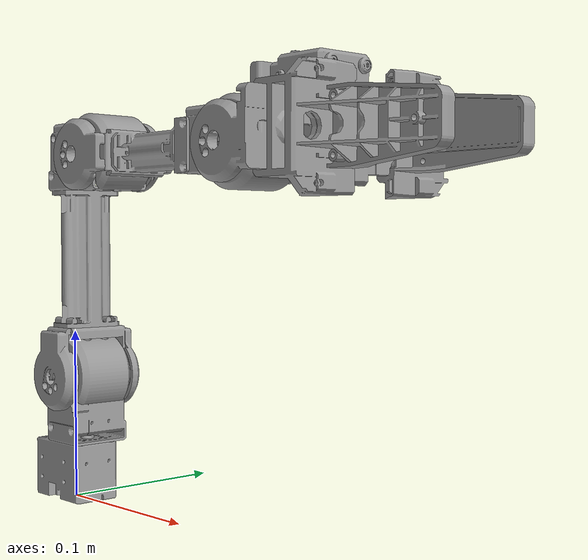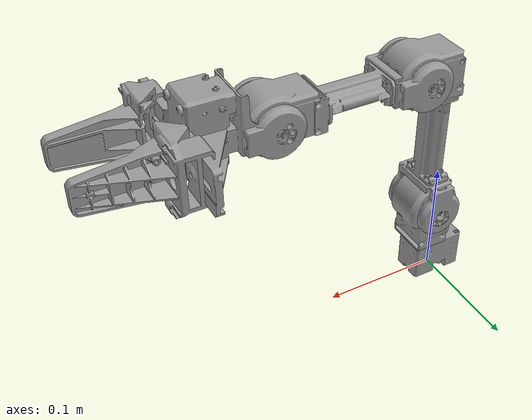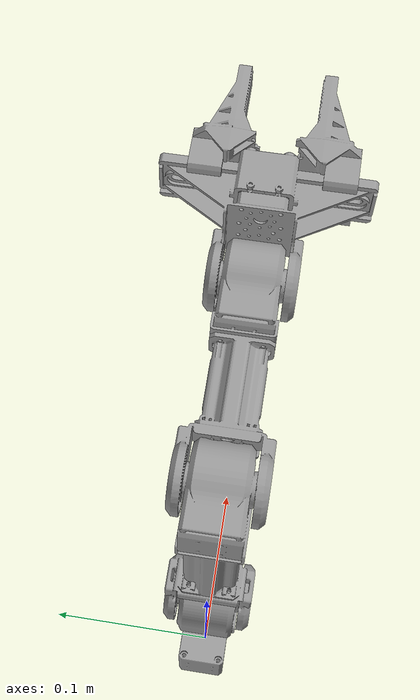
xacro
<?xml version="1.0"?>
<!-- Open_Manipulator Chain -->
<robot name="open_manipulator" xmlns:xacro="http://ros.org/wiki/xacro">

	<!-- .xacro是一种可以反复使用的代码的宏语言，建议将反复调用的代码做成一个宏 -->
  <!-- Import all Gazebo-customization elements, including Gazebo colors -->
  <xacro:include filename="$(find open_manipulator_description)/urdf/open_manipulator.gazebo.xacro" />
  <!-- Import Rviz colors 该包含的文件为颜色的宏文件 -->
  <xacro:include filename="$(find open_manipulator_description)/urdf/materials.xacro" />

  <!-- World -->
  <link name="world">
  </link>

  <!-- World fixed joint-->
  <joint name="world_fixed" type="fixed">
    <origin xyz="0 0 0" rpy="0 0 0"/>
    <parent link="world"/>
    <child link="link1"/>
  </joint>

  <!-- Link 1 -->
  <link name="link1">
    <visual>
      <origin xyz="0 0 0" rpy="0 0 0"/>
      <geometry>
        <mesh filename="package://open_manipulator_description/meshes/chain_link1.stl" scale="0.001 0.001 0.001"/>
      </geometry>
      <material name="grey"/>
    </visual>

    <collision>
      <origin xyz="0 0 0" rpy="0 0 0"/>
      <geometry>
        <mesh filename="package://open_manipulator_description/meshes/chain_link1.stl" scale="0.001 0.001 0.001"/>
      </geometry>
    </collision>

    <inertial>
      <origin xyz="0 0 0" />
      <mass value="0.082" />
      <inertia ixx="0.1" ixy="0.0" ixz="0.0"
               iyy="0.1" iyz="0.0"
               izz="0.1" />
    </inertial>

  </link>

  <!-- Joint 1 -->
  <joint name="joint1" type="revolute">
    <parent link="link1"/>
    <child link="link2"/>
    <origin xyz="0.012 0.0 0.017" rpy="0 0 0"/>
    <axis xyz="0 0 1"/>
    <limit velocity="6.5" effort="1000" lower="${-pi*0.9}" upper="${pi*0.9}" />
  </joint>

	<!--transmission标签输入关节与舵机之间的接口命令，命令接口有力(effort)、速度(velocity)和位置(position)-->
  <!-- Transmission 1 -->
  <transmission name="tran1">
    <type>transmission_interface/SimpleTransmission</type>  <!-- 力的传递方式和形式 -->
    <joint name="joint1">																		<!-- 设置关节信息 -->
      <hardwareInterface>hardware_interface/EffortJointInterface</hardwareInterface>		<!-- 设置硬件接口 -->
    </joint>
    <actuator name="motor1">																<!-- 设置舵机信息 -->
      <hardwareInterface>hardware_interface/EffortJointInterface</hardwareInterface>
      <mechanicalReduction>1</mechanicalReduction>					<!-- 设置舵机和关节之间的齿轮比 -->
    </actuator>
  </transmission>

  <!--  Link 2 -->
  <link name="link2">
    <visual>
      <origin xyz="0 0 0.018" rpy="0 0 0"/>
      <geometry>
        <mesh filename="package://open_manipulator_description/meshes/chain_link2.stl" scale="0.001 0.001 0.001"/>
      </geometry>
      <material name="grey"/>
    </visual>

    <collision>
      <origin xyz="0 0 0.018" rpy="0 0 0"/>
      <geometry>
        <mesh filename="package://open_manipulator_description/meshes/chain_link2.stl" scale="0.001 0.001 0.001"/>
      </geometry>
    </collision>

    <inertial>
      <origin xyz="0 0 0" />
      <mass value="0.098" />
      <inertia ixx="0.1" ixy="0.0" ixz="0.0"
               iyy="0.1" iyz="0.0"
               izz="0.1" />
    </inertial>

  </link>

  <!--  Joint 2 -->
  <joint name="joint2" type="revolute">
    <parent link="link2"/>
    <child link="link3"/>
    <origin xyz="0.0 0.0 0.058" rpy="0 0 0"/>
    <axis xyz="0 1 0"/>
    <limit velocity="6.5" effort="1000" lower="${-pi*0.5}" upper="${pi*0.5}" />
  </joint>

  <!-- Transmission 2 -->
  <transmission name="tran2">
    <type>transmission_interface/SimpleTransmission</type>
    <joint name="joint2">
      <hardwareInterface>hardware_interface/EffortJointInterface</hardwareInterface>
    </joint>
    <actuator name="motor2">
      <hardwareInterface>hardware_interface/EffortJointInterface</hardwareInterface>
      <mechanicalReduction>1</mechanicalReduction>
    </actuator>
  </transmission>

  <!--  Link 3 -->
  <link name="link3">
    <visual>
      <origin xyz="0 0 0" rpy="0 0 0"/>
      <geometry>
        <mesh filename="package://open_manipulator_description/meshes/chain_link3.stl" scale="0.001 0.001 0.001"/>
      </geometry>
      <material name="grey"/>
    </visual>

    <collision>
      <origin xyz="0 0 0" rpy="0 0 0"/>
      <geometry>
        <mesh filename="package://open_manipulator_description/meshes/chain_link3.stl" scale="0.001 0.001 0.001"/>
      </geometry>
    </collision>

    <inertial>
      <origin xyz="0 0 0" />
      <mass value="0.136" />
      <inertia ixx="0.1" ixy="0.0" ixz="0.0"
               iyy="0.1" iyz="0.0"
               izz="0.1" />
    </inertial>

  </link>

  <!--  Joint 3 -->
  <joint name="joint3" type="revolute">
    <parent link="link3"/>
    <child link="link4"/>
    <origin xyz="0.024 0 0.128" rpy="0 0 0"/>
    <axis xyz="0 1 0"/>
    <limit velocity="6.5" effort="1000" lower="${-pi*0.3}" upper="${pi*0.44}" />
  </joint>

  <!-- Transmission 3 -->
  <transmission name="tran3">
    <type>transmission_interface/SimpleTransmission</type>
    <joint name="joint3">
      <hardwareInterface>hardware_interface/EffortJointInterface</hardwareInterface>
    </joint>
    <actuator name="motor3">
      <hardwareInterface>hardware_interface/EffortJointInterface</hardwareInterface>
      <mechanicalReduction>1</mechanicalReduction>
    </actuator>
  </transmission>

  <!--  Link 4 -->
  <link name="link4">
    <visual>
      <origin xyz="0 0 0" rpy="0 0 0"/>
      <geometry>
        <mesh filename="package://open_manipulator_description/meshes/chain_link4.stl" scale="0.001 0.001 0.001"/>
      </geometry>
      <material name="grey"/>
    </visual>

    <collision>
      <origin xyz="0 0 0" rpy="0 0 0"/>
      <geometry>
        <mesh filename="package://open_manipulator_description/meshes/chain_link4.stl" scale="0.001 0.001 0.001"/>
      </geometry>
    </collision>

    <inertial>
      <origin xyz="0 0 0" />
      <mass value="0.131" />
      <inertia ixx="0.1" ixy="0.0" ixz="0.0"
               iyy="0.1" iyz="0.0"
               izz="0.1" />
    </inertial>

  </link>

  <!--  Joint 4 -->
  <joint name="joint4" type="revolute">
    <parent link="link4"/>
    <child link="link5"/>
    <origin xyz="0.124 0.0 0.0" rpy="0 0 0"/>
    <axis xyz="0 1 0"/>
    <limit velocity="6.5" effort="1000" lower="${-pi*0.4}" upper="${pi*0.5}" />
  </joint>

  <!-- Transmission 4 -->
  <transmission name="tran4">
    <type>transmission_interface/SimpleTransmission</type>
    <joint name="joint4">
      <hardwareInterface>hardware_interface/EffortJointInterface</hardwareInterface>
    </joint>
    <actuator name="motor4">
      <hardwareInterface>hardware_interface/EffortJointInterface</hardwareInterface>
      <mechanicalReduction>1</mechanicalReduction>
    </actuator>
  </transmission>

  <!--  Link 5 -->
  <link name="link5">
    <visual>
      <origin xyz="0 0 0" rpy="0 0 0"/>
      <geometry>
        <mesh filename="package://open_manipulator_description/meshes/chain_link5.stl" scale="0.001 0.001 0.001"/>
      </geometry>
      <material name="grey"/>
    </visual>

    <collision>
      <origin xyz="0 0 0" rpy="0 0 0"/>
      <geometry>
        <mesh filename="package://open_manipulator_description/meshes/chain_link5.stl" scale="0.001 0.001 0.001"/>
      </geometry>
    </collision>

    <inertial>
      <origin xyz="0 0 0" />
      <mass value="0.141" />
      <inertia ixx="0.1" ixy="0.0" ixz="0.0"
               iyy="0.1" iyz="0.0"
               izz="0.1" />
    </inertial>

  </link>

  <!--  Grip link -->
  <link name="grip_link">
    <visual>
      <origin xyz="0.028 0.0246 0" rpy="0 0 0"/>
      <geometry>
        <mesh filename="package://open_manipulator_description/meshes/chain_link_grip_l.stl" scale="0.001 0.001 0.001"/>
      </geometry>
      <material name="grey"/>
    </visual>

    <collision>
      <origin xyz="0.028 0.0246 0" rpy="0 0 0"/>
      <geometry>
        <mesh filename="package://open_manipulator_description/meshes/chain_link_grip_l.stl" scale="0.001 0.001 0.001"/>
      </geometry>
    </collision>

    <inertial>
      <origin xyz="0 0 0" />
      <mass value="0.017" />
      <inertia ixx="0.1" ixy="0.0" ixz="0.0"
               iyy="0.1" iyz="0.0"
               izz="0.1" />
    </inertial>

  </link>

  <!--  Grip joint -->
  <joint name="grip_joint" type="prismatic">
    <parent link="link5"/>
    <child link="grip_link"/>
    <origin xyz="0.0536 0.0 0.0" rpy="0 0 0"/>
    <axis xyz="0 -1 0"/>
    <limit velocity="3.5" effort="100" lower="-0.015" upper="0.0105" />
  </joint>

  <!-- Transmission 5 -->
  <transmission name="tran5">
    <type>transmission_interface/SimpleTransmission</type>
    <joint name="grip_joint">
      <hardwareInterface>hardware_interface/EffortJointInterface</hardwareInterface>
    </joint>
    <actuator name="motor7">
      <hardwareInterface>hardware_interface/EffortJointInterface</hardwareInterface>
      <mechanicalReduction>1</mechanicalReduction>
    </actuator>
  </transmission>

  <!--  Grip link sub -->
  <link name="grip_link_sub">
    <visual>
      <origin xyz="0.028 -0.0246 0" rpy="0 0 0"/>
      <geometry>
        <mesh filename="package://open_manipulator_description/meshes/chain_link_grip_r.stl" scale="0.001 0.001 0.001"/>
      </geometry>
      <material name="grey"/>
    </visual>

    <collision>
      <origin xyz="0.028 -0.0246 0" rpy="0 0 0"/>
      <geometry>
        <mesh filename="package://open_manipulator_description/meshes/chain_link_grip_r.stl" scale="0.001 0.001 0.001"/>
      </geometry>
    </collision>

    <inertial>
      <origin xyz="0 0 0" />
      <mass value="0.017" />
      <inertia ixx="0.1" ixy="0.0" ixz="0.0"
               iyy="0.1" iyz="0.0"
               izz="0.1" />
    </inertial>

  </link>

  <!--  Grip joint sub -->
  <joint name="grip_joint_sub" type="prismatic">
    <parent link="link5"/>
    <child link="grip_link_sub"/>
    <origin xyz="0.0536 0 0" rpy="0 0 0"/>
    <axis xyz="0 1 0"/>
    <limit velocity="3.5" effort="100" lower="-0.015" upper="0.0105" />
  </joint>

  <!-- Transmission 6 -->
  <transmission name="tran6">
    <type>transmission_interface/SimpleTransmission</type>
    <joint name="grip_joint_sub">
      <hardwareInterface>hardware_interface/EffortJointInterface</hardwareInterface>
    </joint>
    <actuator name="motor8">
      <hardwareInterface>hardware_interface/EffortJointInterface</hardwareInterface>
      <mechanicalReduction>1</mechanicalReduction>
    </actuator>
  </transmission>

</robot>
